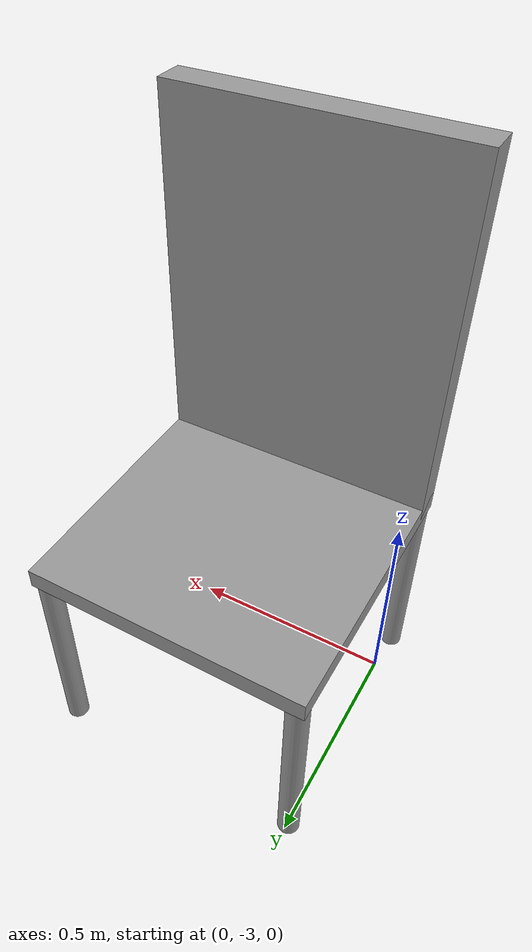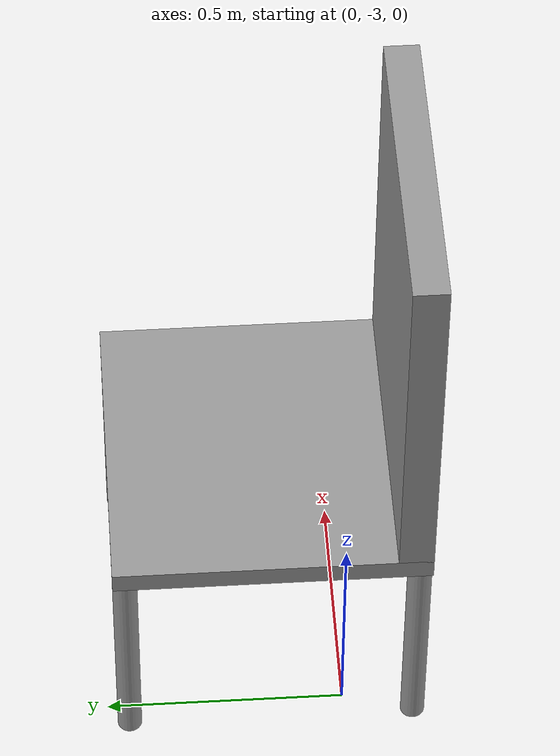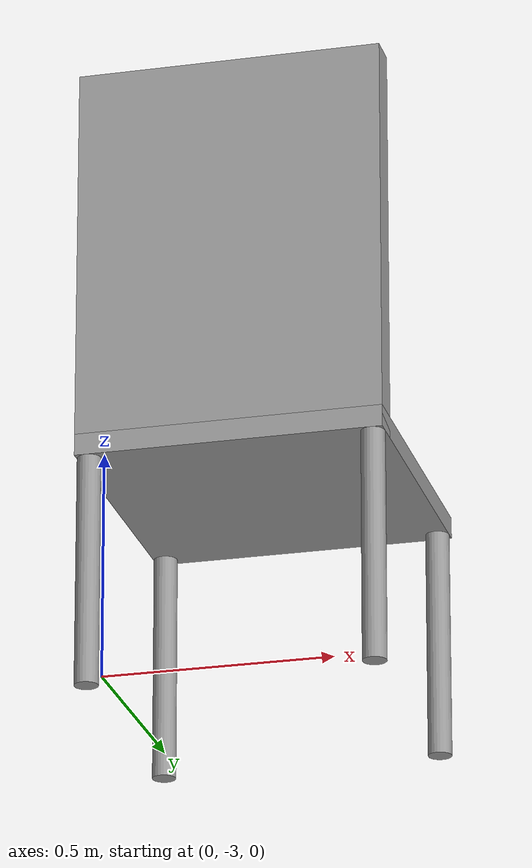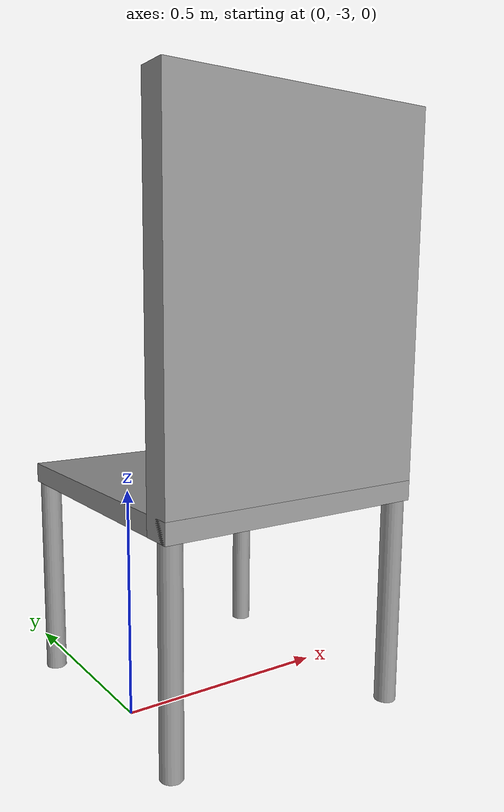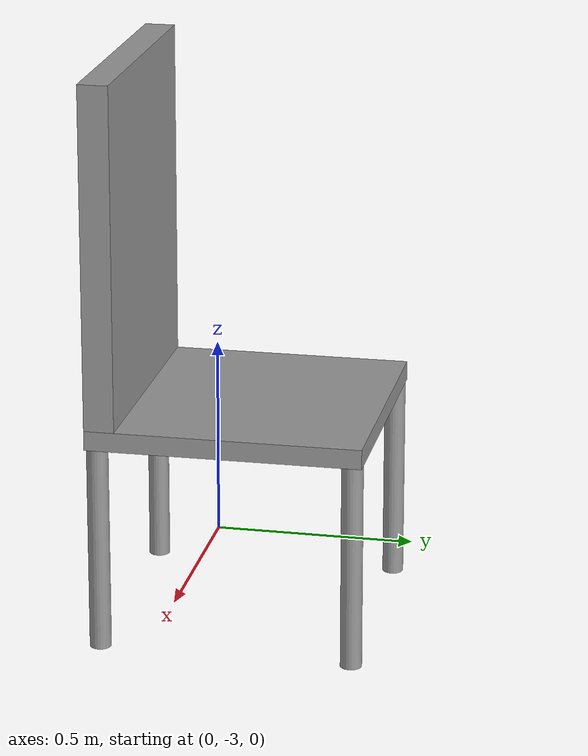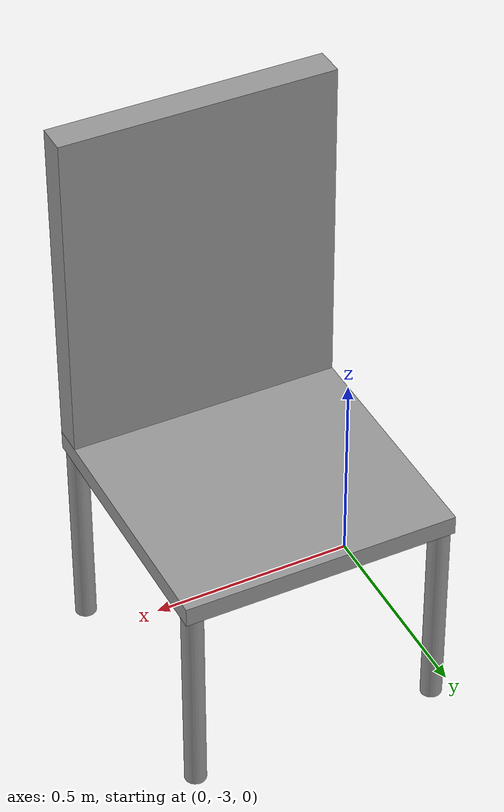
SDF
<?xml version='1.0'?>
<sdf version='1.6'>
  <model name='chair2'>
    <link name='link_12'>
      <pose frame=''>0.315657 -2.84973 0.453284 0 -0 0</pose>
      <inertial>
        <mass>0.0218595</mass>
        <inertia>
          <ixx>0.00079758</ixx>
          <ixy>0</ixy>
          <ixz>0</ixz>
          <iyy>0.00079758</iyy>
          <iyz>0</iyz>
          <izz>0.001587</izz>
        </inertia>
        <pose frame=''>0 0 0 0 -0 0</pose>
      </inertial>
      <gravity>1</gravity>
      <self_collide>0</self_collide>
      <kinematic>0</kinematic>
      <visual name='visual'>
        <pose frame=''>0 0 0 0 -0 0</pose>
        <geometry>
          <box>
            <size>0.66 0.66 0.047346</size>
          </box>
        </geometry>
        <material>
          <lighting>1</lighting>
          <script>
            <uri>file://media/materials/scripts/gazebo.material</uri>
            <name>Gazebo/Grey</name>
          </script>
          <shader type='pixel'>
            <normal_map>__default__</normal_map>
          </shader>
          <ambient>0.3 0.3 0.3 1</ambient>
          <diffuse>0.7 0.7 0.7 1</diffuse>
          <specular>0.01 0.01 0.01 1</specular>
          <emissive>0 0 0 1</emissive>
        </material>
        <transparency>0</transparency>
        <cast_shadows>1</cast_shadows>
      </visual>
      <collision name='collision'>
        <laser_retro>0</laser_retro>
        <max_contacts>10</max_contacts>
        <pose frame=''>0 0 0 0 -0 0</pose>
        <geometry>
          <box>
            <size>0.66 0.66 0.047346</size>
          </box>
        </geometry>
        <surface>
          <friction>
            <ode>
              <mu>1</mu>
              <mu2>1</mu2>
              <fdir1>0 0 0</fdir1>
              <slip1>0</slip1>
              <slip2>0</slip2>
            </ode>
            <torsional>
              <coefficient>1</coefficient>
              <patch_radius>0</patch_radius>
              <surface_radius>0</surface_radius>
              <use_patch_radius>1</use_patch_radius>
              <ode>
                <slip>0</slip>
              </ode>
            </torsional>
          </friction>
          <bounce>
            <restitution_coefficient>0</restitution_coefficient>
            <threshold>1e+06</threshold>
          </bounce>
          <contact>
            <collide_without_contact>0</collide_without_contact>
            <collide_without_contact_bitmask>1</collide_without_contact_bitmask>
            <collide_bitmask>1</collide_bitmask>
            <ode>
              <soft_cfm>0</soft_cfm>
              <soft_erp>0.2</soft_erp>
              <kp>1e+13</kp>
              <kd>1</kd>
              <max_vel>0.01</max_vel>
              <min_depth>0</min_depth>
            </ode>
            <bullet>
              <split_impulse>1</split_impulse>
              <split_impulse_penetration_threshold>-0.01</split_impulse_penetration_threshold>
              <soft_cfm>0</soft_cfm>
              <soft_erp>0.2</soft_erp>
              <kp>1e+13</kp>
              <kd>1</kd>
            </bullet>
          </contact>
        </surface>
      </collision>
    </link>
    <link name='link_13'>
      <pose frame=''>0.011338 -3.15405 0.177779 0 -0 0</pose>
      <inertial>
        <mass>0.00133056</mass>
        <inertia>
          <ixx>2.83472e-05</ixx>
          <ixy>0</ixy>
          <ixz>0</ixz>
          <iyy>2.83472e-05</iyy>
          <iyz>0</iyz>
          <izz>4.38741e-07</izz>
        </inertia>
        <pose frame=''>0 0 0 0 -0 0</pose>
      </inertial>
      <visual name='visual'>
        <pose frame=''>0 0 0 0 -0 0</pose>
        <geometry>
          <cylinder>
            <radius>0.0256804</radius>
            <length>0.503665</length>
          </cylinder>
        </geometry>
        <material>
          <lighting>1</lighting>
          <script>
            <uri>file://media/materials/scripts/gazebo.material</uri>
            <name>Gazebo/Grey</name>
          </script>
          <shader type='pixel'/>
          <ambient>0.3 0.3 0.3 1</ambient>
          <diffuse>0.7 0.7 0.7 1</diffuse>
          <specular>0.01 0.01 0.01 1</specular>
          <emissive>0 0 0 1</emissive>
        </material>
        <transparency>0</transparency>
        <cast_shadows>1</cast_shadows>
      </visual>
      <collision name='collision'>
        <laser_retro>0</laser_retro>
        <max_contacts>10</max_contacts>
        <pose frame=''>0 0 0 0 -0 0</pose>
        <geometry>
          <cylinder>
            <radius>0.02568</radius>
            <length>0.503665</length>
          </cylinder>
        </geometry>
        <surface>
          <friction>
            <ode>
              <mu>1</mu>
              <mu2>1</mu2>
              <fdir1>0 0 0</fdir1>
              <slip1>0</slip1>
              <slip2>0</slip2>
            </ode>
            <torsional>
              <coefficient>1</coefficient>
              <patch_radius>0</patch_radius>
              <surface_radius>0</surface_radius>
              <use_patch_radius>1</use_patch_radius>
              <ode>
                <slip>0</slip>
              </ode>
            </torsional>
          </friction>
          <bounce>
            <restitution_coefficient>0</restitution_coefficient>
            <threshold>1e+06</threshold>
          </bounce>
          <contact>
            <collide_without_contact>0</collide_without_contact>
            <collide_without_contact_bitmask>1</collide_without_contact_bitmask>
            <collide_bitmask>1</collide_bitmask>
            <ode>
              <soft_cfm>0</soft_cfm>
              <soft_erp>0.2</soft_erp>
              <kp>1e+13</kp>
              <kd>1</kd>
              <max_vel>0.01</max_vel>
              <min_depth>0</min_depth>
            </ode>
            <bullet>
              <split_impulse>1</split_impulse>
              <split_impulse_penetration_threshold>-0.01</split_impulse_penetration_threshold>
              <soft_cfm>0</soft_cfm>
              <soft_erp>0.2</soft_erp>
              <kp>1e+13</kp>
              <kd>1</kd>
            </bullet>
          </contact>
        </surface>
      </collision>
    </link>
    <link name='link_13_clone'>
      <pose frame=''>0.619977 -3.15405 0.177779 0 -0 0</pose>
      <inertial>
        <mass>0.00133056</mass>
        <inertia>
          <ixx>2.83472e-05</ixx>
          <ixy>0</ixy>
          <ixz>0</ixz>
          <iyy>2.83472e-05</iyy>
          <iyz>0</iyz>
          <izz>4.38741e-07</izz>
        </inertia>
        <pose frame=''>0 0 0 0 -0 0</pose>
      </inertial>
      <visual name='visual'>
        <pose frame=''>0 0 0 0 -0 0</pose>
        <geometry>
          <cylinder>
            <radius>0.0256804</radius>
            <length>0.503665</length>
          </cylinder>
        </geometry>
        <material>
          <lighting>1</lighting>
          <script>
            <uri>file://media/materials/scripts/gazebo.material</uri>
            <name>Gazebo/Grey</name>
          </script>
          <shader type='pixel'/>
          <ambient>0.3 0.3 0.3 1</ambient>
          <diffuse>0.7 0.7 0.7 1</diffuse>
          <specular>0.01 0.01 0.01 1</specular>
          <emissive>0 0 0 1</emissive>
        </material>
        <transparency>0</transparency>
        <cast_shadows>1</cast_shadows>
      </visual>
      <collision name='collision'>
        <laser_retro>0</laser_retro>
        <max_contacts>10</max_contacts>
        <pose frame=''>0 0 0 0 -0 0</pose>
        <geometry>
          <cylinder>
            <radius>0.02568</radius>
            <length>0.503665</length>
          </cylinder>
        </geometry>
        <surface>
          <friction>
            <ode>
              <mu>1</mu>
              <mu2>1</mu2>
              <fdir1>0 0 0</fdir1>
              <slip1>0</slip1>
              <slip2>0</slip2>
            </ode>
            <torsional>
              <coefficient>1</coefficient>
              <patch_radius>0</patch_radius>
              <surface_radius>0</surface_radius>
              <use_patch_radius>1</use_patch_radius>
              <ode>
                <slip>0</slip>
              </ode>
            </torsional>
          </friction>
          <bounce>
            <restitution_coefficient>0</restitution_coefficient>
            <threshold>1e+06</threshold>
          </bounce>
          <contact>
            <collide_without_contact>0</collide_without_contact>
            <collide_without_contact_bitmask>1</collide_without_contact_bitmask>
            <collide_bitmask>1</collide_bitmask>
            <ode>
              <soft_cfm>0</soft_cfm>
              <soft_erp>0.2</soft_erp>
              <kp>1e+13</kp>
              <kd>1</kd>
              <max_vel>0.01</max_vel>
              <min_depth>0</min_depth>
            </ode>
            <bullet>
              <split_impulse>1</split_impulse>
              <split_impulse_penetration_threshold>-0.01</split_impulse_penetration_threshold>
              <soft_cfm>0</soft_cfm>
              <soft_erp>0.2</soft_erp>
              <kp>1e+13</kp>
              <kd>1</kd>
            </bullet>
          </contact>
        </surface>
      </collision>
    </link>
    <link name='link_13_clone_0'>
      <pose frame=''>0.619977 -2.54541 0.177779 0 -0 0</pose>
      <inertial>
        <mass>0.00133056</mass>
        <inertia>
          <ixx>2.83472e-05</ixx>
          <ixy>0</ixy>
          <ixz>0</ixz>
          <iyy>2.83472e-05</iyy>
          <iyz>0</iyz>
          <izz>4.38741e-07</izz>
        </inertia>
        <pose frame=''>0 0 0 0 -0 0</pose>
      </inertial>
      <visual name='visual'>
        <pose frame=''>0 0 0 0 -0 0</pose>
        <geometry>
          <cylinder>
            <radius>0.0256804</radius>
            <length>0.503665</length>
          </cylinder>
        </geometry>
        <material>
          <lighting>1</lighting>
          <script>
            <uri>file://media/materials/scripts/gazebo.material</uri>
            <name>Gazebo/Grey</name>
          </script>
          <shader type='pixel'/>
          <ambient>0.3 0.3 0.3 1</ambient>
          <diffuse>0.7 0.7 0.7 1</diffuse>
          <specular>0.01 0.01 0.01 1</specular>
          <emissive>0 0 0 1</emissive>
        </material>
        <transparency>0</transparency>
        <cast_shadows>1</cast_shadows>
      </visual>
      <collision name='collision'>
        <laser_retro>0</laser_retro>
        <max_contacts>10</max_contacts>
        <pose frame=''>0 0 0 0 -0 0</pose>
        <geometry>
          <cylinder>
            <radius>0.02568</radius>
            <length>0.503665</length>
          </cylinder>
        </geometry>
        <surface>
          <friction>
            <ode>
              <mu>1</mu>
              <mu2>1</mu2>
              <fdir1>0 0 0</fdir1>
              <slip1>0</slip1>
              <slip2>0</slip2>
            </ode>
            <torsional>
              <coefficient>1</coefficient>
              <patch_radius>0</patch_radius>
              <surface_radius>0</surface_radius>
              <use_patch_radius>1</use_patch_radius>
              <ode>
                <slip>0</slip>
              </ode>
            </torsional>
          </friction>
          <bounce>
            <restitution_coefficient>0</restitution_coefficient>
            <threshold>1e+06</threshold>
          </bounce>
          <contact>
            <collide_without_contact>0</collide_without_contact>
            <collide_without_contact_bitmask>1</collide_without_contact_bitmask>
            <collide_bitmask>1</collide_bitmask>
            <ode>
              <soft_cfm>0</soft_cfm>
              <soft_erp>0.2</soft_erp>
              <kp>1e+13</kp>
              <kd>1</kd>
              <max_vel>0.01</max_vel>
              <min_depth>0</min_depth>
            </ode>
            <bullet>
              <split_impulse>1</split_impulse>
              <split_impulse_penetration_threshold>-0.01</split_impulse_penetration_threshold>
              <soft_cfm>0</soft_cfm>
              <soft_erp>0.2</soft_erp>
              <kp>1e+13</kp>
              <kd>1</kd>
            </bullet>
          </contact>
        </surface>
      </collision>
    </link>
    <link name='link_13_clone_0_clone'>
      <pose frame=''>0.011338 -2.54541 0.177779 0 -0 0</pose>
      <inertial>
        <mass>0.00133056</mass>
        <inertia>
          <ixx>2.83472e-05</ixx>
          <ixy>0</ixy>
          <ixz>0</ixz>
          <iyy>2.83472e-05</iyy>
          <iyz>0</iyz>
          <izz>4.38741e-07</izz>
        </inertia>
        <pose frame=''>0 0 0 0 -0 0</pose>
      </inertial>
      <visual name='visual'>
        <pose frame=''>0 0 0 0 -0 0</pose>
        <geometry>
          <cylinder>
            <radius>0.0256804</radius>
            <length>0.503665</length>
          </cylinder>
        </geometry>
        <material>
          <lighting>1</lighting>
          <script>
            <uri>file://media/materials/scripts/gazebo.material</uri>
            <name>Gazebo/Grey</name>
          </script>
          <shader type='pixel'/>
          <ambient>0.3 0.3 0.3 1</ambient>
          <diffuse>0.7 0.7 0.7 1</diffuse>
          <specular>0.01 0.01 0.01 1</specular>
          <emissive>0 0 0 1</emissive>
        </material>
        <transparency>0</transparency>
        <cast_shadows>1</cast_shadows>
      </visual>
      <collision name='collision'>
        <laser_retro>0</laser_retro>
        <max_contacts>10</max_contacts>
        <pose frame=''>0 0 0 0 -0 0</pose>
        <geometry>
          <cylinder>
            <radius>0.02568</radius>
            <length>0.503665</length>
          </cylinder>
        </geometry>
        <surface>
          <friction>
            <ode>
              <mu>1</mu>
              <mu2>1</mu2>
              <fdir1>0 0 0</fdir1>
              <slip1>0</slip1>
              <slip2>0</slip2>
            </ode>
            <torsional>
              <coefficient>1</coefficient>
              <patch_radius>0</patch_radius>
              <surface_radius>0</surface_radius>
              <use_patch_radius>1</use_patch_radius>
              <ode>
                <slip>0</slip>
              </ode>
            </torsional>
          </friction>
          <bounce>
            <restitution_coefficient>0</restitution_coefficient>
            <threshold>1e+06</threshold>
          </bounce>
          <contact>
            <collide_without_contact>0</collide_without_contact>
            <collide_without_contact_bitmask>1</collide_without_contact_bitmask>
            <collide_bitmask>1</collide_bitmask>
            <ode>
              <soft_cfm>0</soft_cfm>
              <soft_erp>0.2</soft_erp>
              <kp>1e+13</kp>
              <kd>1</kd>
              <max_vel>0.01</max_vel>
              <min_depth>0</min_depth>
            </ode>
            <bullet>
              <split_impulse>1</split_impulse>
              <split_impulse_penetration_threshold>-0.01</split_impulse_penetration_threshold>
              <soft_cfm>0</soft_cfm>
              <soft_erp>0.2</soft_erp>
              <kp>1e+13</kp>
              <kd>1</kd>
            </bullet>
          </contact>
        </surface>
      </collision>
    </link>
    <link name='link_14'>
      <pose frame=''>0.315657 -3.14339 0.868122 0 -0 0</pose>
      <inertial>
        <mass>0.0453051</mass>
        <inertia>
          <ixx>0.00292386</ixx>
          <ixy>0</ixy>
          <ixz>0</ixz>
          <iyy>0.0045485</iyy>
          <iyz>0</iyz>
          <izz>0.00166451</izz>
        </inertia>
        <pose frame=''>0 0 0 0 -0 0</pose>
      </inertial>
      <gravity>1</gravity>
      <self_collide>0</self_collide>
      <kinematic>0</kinematic>
      <visual name='visual'>
        <pose frame=''>0 0 0 0 -0 0</pose>
        <geometry>
          <box>
            <size>0.66 0.072671 0.877021</size>
          </box>
        </geometry>
        <material>
          <lighting>1</lighting>
          <script>
            <uri>file://media/materials/scripts/gazebo.material</uri>
            <name>Gazebo/Grey</name>
          </script>
          <shader type='pixel'>
            <normal_map>__default__</normal_map>
          </shader>
          <ambient>0.3 0.3 0.3 1</ambient>
          <diffuse>0.7 0.7 0.7 1</diffuse>
          <specular>0.01 0.01 0.01 1</specular>
          <emissive>0 0 0 1</emissive>
        </material>
        <transparency>0</transparency>
        <cast_shadows>1</cast_shadows>
      </visual>
      <collision name='collision'>
        <laser_retro>0</laser_retro>
        <max_contacts>10</max_contacts>
        <pose frame=''>0 0 0 0 -0 0</pose>
        <geometry>
          <box>
            <size>0.66 0.072671 0.877021</size>
          </box>
        </geometry>
        <surface>
          <friction>
            <ode>
              <mu>1</mu>
              <mu2>1</mu2>
              <fdir1>0 0 0</fdir1>
              <slip1>0</slip1>
              <slip2>0</slip2>
            </ode>
            <torsional>
              <coefficient>1</coefficient>
              <patch_radius>0</patch_radius>
              <surface_radius>0</surface_radius>
              <use_patch_radius>1</use_patch_radius>
              <ode>
                <slip>0</slip>
              </ode>
            </torsional>
          </friction>
          <bounce>
            <restitution_coefficient>0</restitution_coefficient>
            <threshold>1e+06</threshold>
          </bounce>
          <contact>
            <collide_without_contact>0</collide_without_contact>
            <collide_without_contact_bitmask>1</collide_without_contact_bitmask>
            <collide_bitmask>1</collide_bitmask>
            <ode>
              <soft_cfm>0</soft_cfm>
              <soft_erp>0.2</soft_erp>
              <kp>1e+13</kp>
              <kd>1</kd>
              <max_vel>0.01</max_vel>
              <min_depth>0</min_depth>
            </ode>
            <bullet>
              <split_impulse>1</split_impulse>
              <split_impulse_penetration_threshold>-0.01</split_impulse_penetration_threshold>
              <soft_cfm>0</soft_cfm>
              <soft_erp>0.2</soft_erp>
              <kp>1e+13</kp>
              <kd>1</kd>
            </bullet>
          </contact>
        </surface>
      </collision>
    </link>
    <joint name='link_12_JOINT_4' type='fixed'>
      <parent>link_12</parent>
      <child>link_13</child>
      <pose frame=''>0 0 0 0 -0 0</pose>
      <physics>
        <ode>
          <limit>
            <cfm>0</cfm>
            <erp>0.2</erp>
          </limit>
          <suspension>
            <cfm>0</cfm>
            <erp>0.2</erp>
          </suspension>
        </ode>
      </physics>
    </joint>
    <joint name='link_12_JOINT_5' type='fixed'>
      <parent>link_12</parent>
      <child>link_13_clone</child>
      <pose frame=''>0 0 0 0 -0 0</pose>
      <physics>
        <ode>
          <limit>
            <cfm>0</cfm>
            <erp>0.2</erp>
          </limit>
          <suspension>
            <cfm>0</cfm>
            <erp>0.2</erp>
          </suspension>
        </ode>
      </physics>
    </joint>
    <joint name='link_12_JOINT_6' type='fixed'>
      <parent>link_12</parent>
      <child>link_13_clone_0</child>
      <pose frame=''>0 0 0 0 -0 0</pose>
      <physics>
        <ode>
          <limit>
            <cfm>0</cfm>
            <erp>0.2</erp>
          </limit>
          <suspension>
            <cfm>0</cfm>
            <erp>0.2</erp>
          </suspension>
        </ode>
      </physics>
    </joint>
    <joint name='link_12_JOINT_7' type='fixed'>
      <parent>link_12</parent>
      <child>link_13_clone_0_clone</child>
      <pose frame=''>0 0 0 0 -0 0</pose>
      <physics>
        <ode>
          <limit>
            <cfm>0</cfm>
            <erp>0.2</erp>
          </limit>
          <suspension>
            <cfm>0</cfm>
            <erp>0.2</erp>
          </suspension>
        </ode>
      </physics>
    </joint>
    <joint name='link_12_JOINT_8' type='fixed'>
      <parent>link_12</parent>
      <child>link_14</child>
      <pose frame=''>0 0 0 0 -0 0</pose>
      <physics>
        <ode>
          <limit>
            <cfm>0</cfm>
            <erp>0.2</erp>
          </limit>
          <suspension>
            <cfm>0</cfm>
            <erp>0.2</erp>
          </suspension>
        </ode>
      </physics>
    </joint>
    <static>0</static>
    <allow_auto_disable>1</allow_auto_disable>
  </model>
</sdf>
